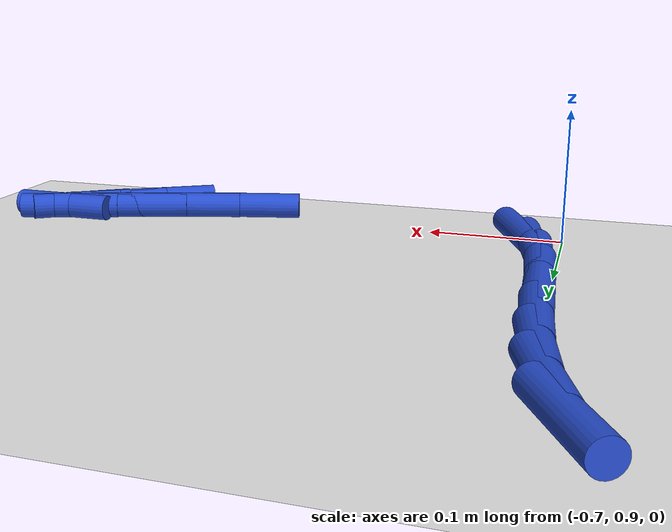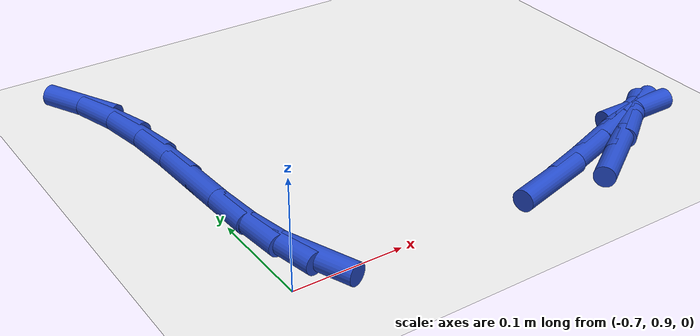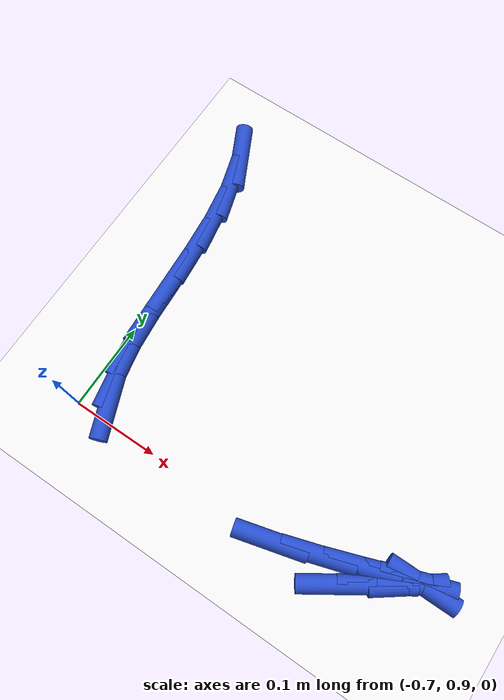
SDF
<sdf version="1.6">
 <world name="default">
  <model name="ground_plane">
   <static>1</static>
   <link name="link">
    <collision name="collision">
     <geometry><plane><normal>0 0 1</normal><size>100 100</size></plane></geometry>
     <surface><friction><ode><mu>100</mu><mu2>50</mu2></ode></friction></surface>
    </collision>
    <visual name="visual">
     <cast_shadows>0</cast_shadows>
     <geometry><plane><normal>0 0 1</normal><size>100 100</size></plane></geometry>
     <material>
      <script><uri>file://media/materials/scripts/gazebo.material</uri><name>Gazebo/WhiteGlow</name></script>
     </material>
    </visual>
   </link>
  </model>
  <model name="line">
   <link name="link_29">
    <pose>-0.3730396628283028 0.897156130145366 0.01 0 1.57 0.5779954486199383</pose>
    <collision name="collision">
     <geometry><cylinder><radius>0.01</radius><length>0.08</length></cylinder></geometry>
    </collision>
    <visual name="visual">
     <material>
      <script><name>Gazebo/Blue</name><uri>file://media/materials/scripts/gazebo.material</uri></script>
     </material>
     <geometry><cylinder><radius>0.01</radius><length>0.08</length></cylinder></geometry>
    </visual>
   </link>
   <link name="link_30">
    <pose>-0.33868189373416085 0.9195679505151154 0.01 0 1.57 0.5697894702301494</pose>
    <collision name="collision">
     <geometry><cylinder><radius>0.01</radius><length>0.08</length></cylinder></geometry>
    </collision>
    <visual name="visual">
     <material>
      <script><name>Gazebo/Blue</name><uri>file://media/materials/scripts/gazebo.material</uri></script>
     </material>
     <geometry><cylinder><radius>0.01</radius><length>0.08</length></cylinder></geometry>
    </visual>
   </link>
   <link name="link_31">
    <pose>-0.3130101847031565 0.936015084588579 0.01 0 1.57 0.6350695238382865</pose>
    <collision name="collision">
     <geometry><cylinder><radius>0.01</radius><length>0.08</length></cylinder></geometry>
    </collision>
    <visual name="visual">
     <material>
      <script><name>Gazebo/Blue</name><uri>file://media/materials/scripts/gazebo.material</uri></script>
     </material>
     <geometry><cylinder><radius>0.01</radius><length>0.08</length></cylinder></geometry>
    </visual>
   </link>
   <link name="link_32">
    <pose>-0.30117153573722155 0.9447390812265715 0.01 0 1.57 0.0011852686835323186</pose>
    <collision name="collision">
     <geometry><cylinder><radius>0.01</radius><length>0.08</length></cylinder></geometry>
    </collision>
    <visual name="visual">
     <material>
      <script><name>Gazebo/Blue</name><uri>file://media/materials/scripts/gazebo.material</uri></script>
     </material>
     <geometry><cylinder><radius>0.01</radius><length>0.08</length></cylinder></geometry>
    </visual>
   </link>
   <link name="link_33">
    <pose>-0.3067237095459434 0.9447325004057487 0.01 0 1.57 0.327273909749804</pose>
    <collision name="collision">
     <geometry><cylinder><radius>0.01</radius><length>0.08</length></cylinder></geometry>
    </collision>
    <visual name="visual">
     <material>
      <script><name>Gazebo/Blue</name><uri>file://media/materials/scripts/gazebo.material</uri></script>
     </material>
     <geometry><cylinder><radius>0.01</radius><length>0.08</length></cylinder></geometry>
    </visual>
   </link>
   <link name="link_34">
    <pose>-0.32760319297617624 0.9376442962601772 0.01 0 1.57 0.3479606941858133</pose>
    <collision name="collision">
     <geometry><cylinder><radius>0.01</radius><length>0.08</length></cylinder></geometry>
    </collision>
    <visual name="visual">
     <material>
      <script><name>Gazebo/Blue</name><uri>file://media/materials/scripts/gazebo.material</uri></script>
     </material>
     <geometry><cylinder><radius>0.01</radius><length>0.08</length></cylinder></geometry>
    </visual>
   </link>
   <link name="link_35">
    <pose>-0.36050421985342607 0.925710462903549 0.01 0 1.57 0.3361949558112934</pose>
    <collision name="collision">
     <geometry><cylinder><radius>0.01</radius><length>0.08</length></cylinder></geometry>
    </collision>
    <visual name="visual">
     <material>
      <script><name>Gazebo/Blue</name><uri>file://media/materials/scripts/gazebo.material</uri></script>
     </material>
     <geometry><cylinder><radius>0.01</radius><length>0.08</length></cylinder></geometry>
    </visual>
   </link>
   <link name="link_36">
    <pose>-0.4021210240031986 0.9111669944495564 0.01 0 1.57 0.3071649054956794</pose>
    <collision name="collision">
     <geometry><cylinder><radius>0.01</radius><length>0.08</length></cylinder></geometry>
    </collision>
    <visual name="visual">
     <material>
      <script><name>Gazebo/Blue</name><uri>file://media/materials/scripts/gazebo.material</uri></script>
     </material>
     <geometry><cylinder><radius>0.01</radius><length>0.08</length></cylinder></geometry>
    </visual>
   </link>
   <link name="link_37">
    <pose>-0.4491478392510006 0.8962498850118914 0.01 0 1.57 0.2597117311935772</pose>
    <collision name="collision">
     <geometry><cylinder><radius>0.01</radius><length>0.08</length></cylinder></geometry>
    </collision>
    <visual name="visual">
     <material>
      <script><name>Gazebo/Blue</name><uri>file://media/materials/scripts/gazebo.material</uri></script>
     </material>
     <geometry><cylinder><radius>0.01</radius><length>0.08</length></cylinder></geometry>
    </visual>
   </link>
   <link name="link_43">
    <pose>-0.6699333479227746 0.9166594445961198 0.01 0 1.57 -1.1981117698360868</pose>
    <collision name="collision">
     <geometry><cylinder><radius>0.01</radius><length>0.08</length></cylinder></geometry>
    </collision>
    <visual name="visual">
     <material>
      <script><name>Gazebo/Blue</name><uri>file://media/materials/scripts/gazebo.material</uri></script>
     </material>
     <geometry><cylinder><radius>0.01</radius><length>0.08</length></cylinder></geometry>
    </visual>
   </link>
   <link name="link_44">
    <pose>-0.6819078115934324 0.9472882117697693 0.01 0 1.57 -1.3742213780564057</pose>
    <collision name="collision">
     <geometry><cylinder><radius>0.01</radius><length>0.08</length></cylinder></geometry>
    </collision>
    <visual name="visual">
     <material>
      <script><name>Gazebo/Blue</name><uri>file://media/materials/scripts/gazebo.material</uri></script>
     </material>
     <geometry><cylinder><radius>0.01</radius><length>0.08</length></cylinder></geometry>
    </visual>
   </link>
   <link name="link_45">
    <pose>-0.6891124580436467 0.9834657949019259 0.01 0 1.57 -1.4710768963742054</pose>
    <collision name="collision">
     <geometry><cylinder><radius>0.01</radius><length>0.08</length></cylinder></geometry>
    </collision>
    <visual name="visual">
     <material>
      <script><name>Gazebo/Blue</name><uri>file://media/materials/scripts/gazebo.material</uri></script>
     </material>
     <geometry><cylinder><radius>0.01</radius><length>0.08</length></cylinder></geometry>
    </visual>
   </link>
   <link name="link_46">
    <pose>-0.693149719620515 1.0238177157968509 0.01 0 1.57 -1.5135655659652048</pose>
    <collision name="collision">
     <geometry><cylinder><radius>0.01</radius><length>0.08</length></cylinder></geometry>
    </collision>
    <visual name="visual">
     <material>
      <script><name>Gazebo/Blue</name><uri>file://media/materials/scripts/gazebo.material</uri></script>
     </material>
     <geometry><cylinder><radius>0.01</radius><length>0.08</length></cylinder></geometry>
    </visual>
   </link>
   <link name="link_47">
    <pose>-0.6956220286711351 1.0669694962588065 0.01 0 1.57 -1.5145535816327758</pose>
    <collision name="collision">
     <geometry><cylinder><radius>0.01</radius><length>0.08</length></cylinder></geometry>
    </collision>
    <visual name="visual">
     <material>
      <script><name>Gazebo/Blue</name><uri>file://media/materials/scripts/gazebo.material</uri></script>
     </material>
     <geometry><cylinder><radius>0.01</radius><length>0.08</length></cylinder></geometry>
    </visual>
   </link>
   <link name="link_48">
    <pose>-0.6981318175426041 1.1115466580920546 0.01 0 1.57 -1.478078813758545</pose>
    <collision name="collision">
     <geometry><cylinder><radius>0.01</radius><length>0.08</length></cylinder></geometry>
    </collision>
    <visual name="visual">
     <material>
      <script><name>Gazebo/Blue</name><uri>file://media/materials/scripts/gazebo.material</uri></script>
     </material>
     <geometry><cylinder><radius>0.01</radius><length>0.08</length></cylinder></geometry>
    </visual>
   </link>
   <link name="link_49">
    <pose>-0.7022815185820194 1.1561747231008557 0.01 0 1.57 -1.4017266032522229</pose>
    <collision name="collision">
     <geometry><cylinder><radius>0.01</radius><length>0.08</length></cylinder></geometry>
    </collision>
    <visual name="visual">
     <material>
      <script><name>Gazebo/Blue</name><uri>file://media/materials/scripts/gazebo.material</uri></script>
     </material>
     <geometry><cylinder><radius>0.01</radius><length>0.08</length></cylinder></geometry>
    </visual>
   </link>
   <link name="link_50">
    <pose>-0.7096735641364784 1.1994792130894725 0.01 0 1.57 -1.2781310200550338</pose>
    <collision name="collision">
     <geometry><cylinder><radius>0.01</radius><length>0.08</length></cylinder></geometry>
    </collision>
    <visual name="visual">
     <material>
      <script><name>Gazebo/Blue</name><uri>file://media/materials/scripts/gazebo.material</uri></script>
     </material>
     <geometry><cylinder><radius>0.01</radius><length>0.08</length></cylinder></geometry>
    </visual>
   </link>
   <link name="link_51">
    <pose>-0.7219086950805731 1.2400846227256874 0.01 0 1.57 -1.1069989036670076</pose>
    <collision name="collision">
     <geometry><cylinder><radius>0.01</radius><length>0.08</length></cylinder></geometry>
    </collision>
    <visual name="visual">
     <material>
      <script><name>Gazebo/Blue</name><uri>file://media/materials/scripts/gazebo.material</uri></script>
     </material>
     <geometry><cylinder><radius>0.01</radius><length>0.08</length></cylinder></geometry>
    </visual>
   </link>
  </model>
 </world>
</sdf>
